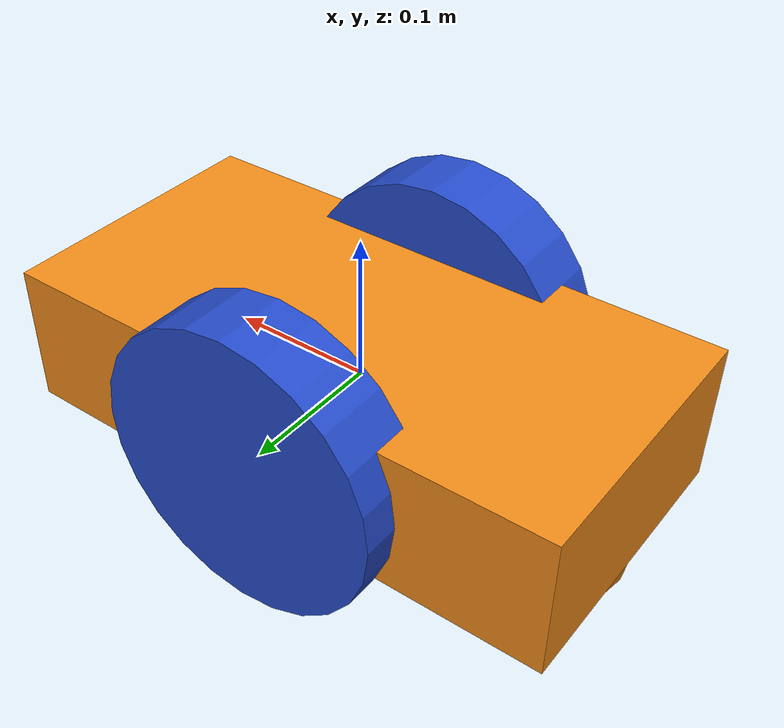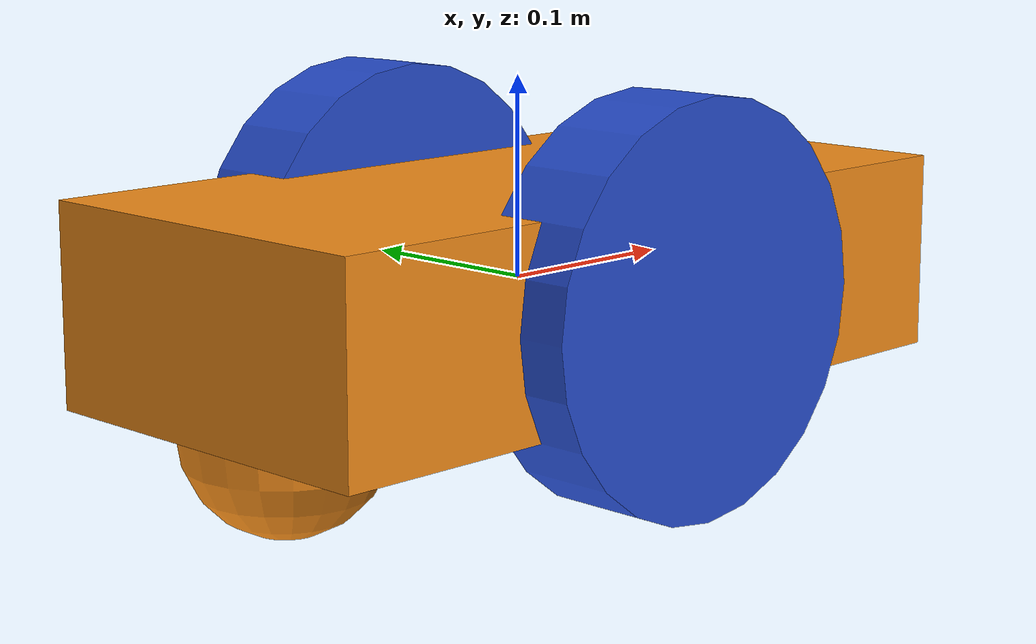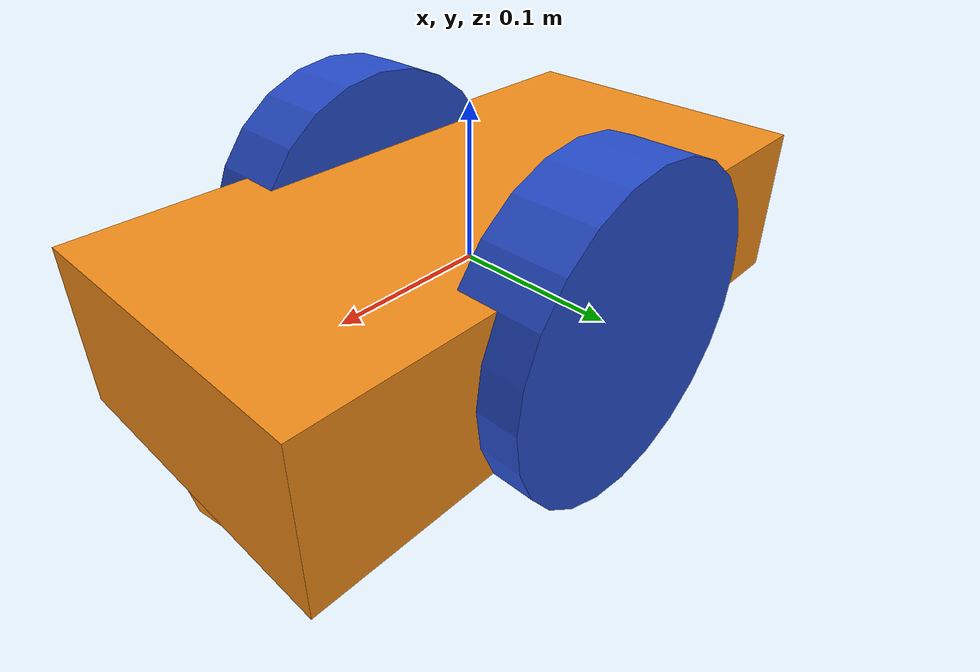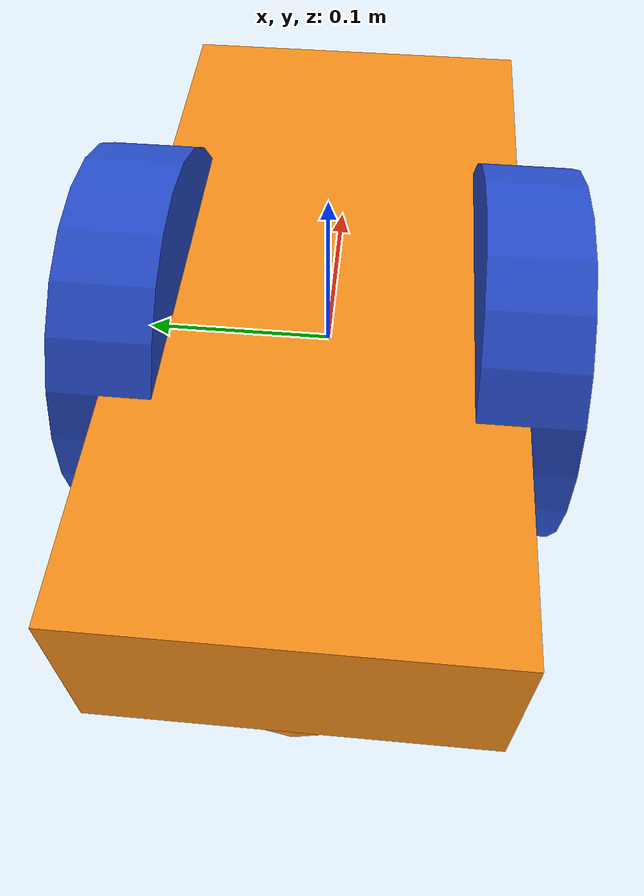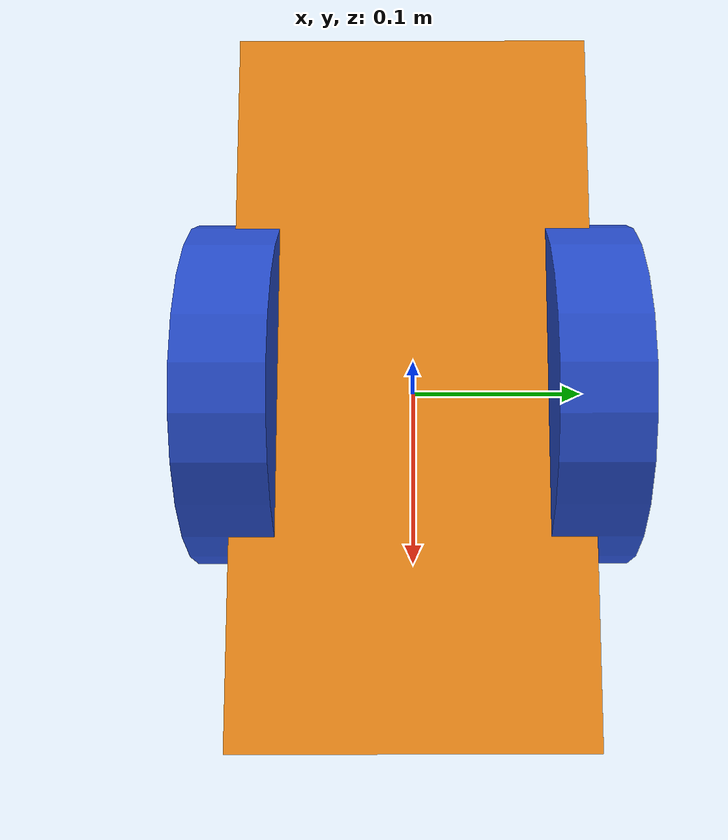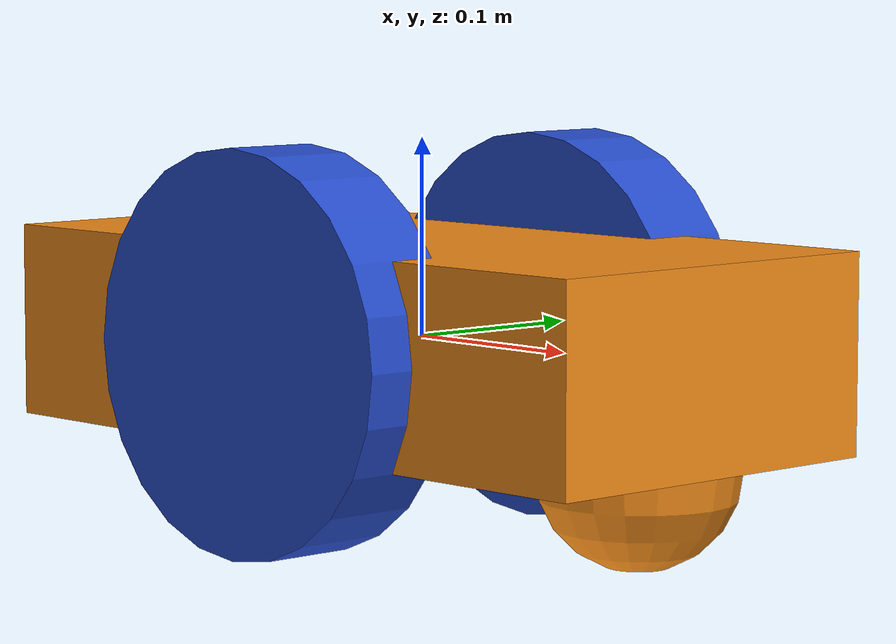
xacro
<?xml version='1.0'?>

<robot name="bot" xmlns:xacro="http://www.ros.org/wiki/xacro">

    <xacro:include filename="$(find bot_gazebo)/urdf/bot.gazebo" />

    <link name='base_link'>

        <inertial>
        <mass value="15.0"/>
        <origin xyz="0.0 0 0.1" rpy=" 0 0 0"/>
        <inertia
            ixx="0.1" ixy="0" ixz="0"
            iyy="0.1" iyz="0"
            izz="0.1"/>
        </inertial>

        <collision name='collision'>
            <geometry>
                <box size=".4 .2 .1"/>
            </geometry>
        </collision>

        <visual name='base_visual'>
        <origin xyz="0 0 0" rpy=" 0 0 0"/>
            <geometry>
                <box size=".4 .2 .1"/>
            </geometry>
        </visual>

        <collision name='caster_collision'>
            <origin xyz="-0.15 0 -0.05" rpy=" 0 0 0"/>
            <geometry>
                <sphere radius="0.05"/>
            </geometry>
            <surface>
                <friction>
                    <ode>
                        <mu>0</mu>
                        <mu2>0</mu2>
                        <slip1>1.0</slip1>
                        <slip2>1.0</slip2>
                    </ode>
                </friction>
            </surface>
        </collision>

        <visual name='caster_visual'>
            <origin xyz="-0.15 0 -0.05" rpy=" 0 0 0"/>
            <geometry>
                <sphere radius="0.05"/>
            </geometry>
        </visual>

        <collision name='caster_front_collision'>
            <origin xyz="0.15 0 -0.05" rpy=" 0 0 0"/>
            <geometry>
                <sphere radius="0.05"/>
            </geometry>
            <surface>
                <friction>
                    <ode>
                        <mu>0</mu>
                        <mu2>0</mu2>
                        <slip1>1.0</slip1>
                        <slip2>1.0</slip2>
                    </ode>
                </friction>
            </surface>
        </collision>

        <visual name='caster_front_visual'>
            <origin xyz="0.15 0 -0.05" rpy=" 0 0 0"/>
            <geometry>
                <sphere radius="0.05"/>
            </geometry>
        </visual>
    </link>

    <link name="left_wheel">
        <collision name="collision">
            <origin xyz="0 0 0" rpy="0 1.5707 1.5707"/>
            <geometry>
                <cylinder radius="0.1" length="0.05"/>
            </geometry>
        </collision>
        <visual name="left_wheel_visual">
            <origin xyz="0 0 0" rpy="0 1.5707 1.5707"/>
            <geometry>
                <cylinder radius="0.1" length="0.05"/>
            </geometry>
        </visual>
        <inertial>
            <origin xyz="0 0 0" rpy="0 1.5707 1.5707"/>
            <mass value="5"/>
            <inertia
                ixx=".1" ixy="0.0" ixz="0.0"
                iyy=".1" iyz="0.0"
                izz=".1"/>
        </inertial>
    </link>

    <link name="right_wheel">
        <collision name="collision">
            <origin xyz="0 0 0" rpy="0 1.5707 1.5707"/>
            <geometry>
                <cylinder radius="0.1" length="0.05"/>
            </geometry>
        </collision>
        <visual name="right_wheel_visual">
            <origin xyz="0 0 0" rpy="0 1.5707 1.5707"/>
            <geometry>
                <cylinder radius="0.1" length="0.05"/>
            </geometry>
        </visual>
        <inertial>
            <origin xyz="0 0 0" rpy="0 1.5707 1.5707"/>
            <mass value="5"/>
            <inertia
                ixx=".1" ixy="0.0" ixz="0.0"
                iyy=".1" iyz="0.0"
                izz=".1"/>
        </inertial>
    </link>

    <joint type="continuous" name="left_joint">
        <origin xyz="0 0.1 0" rpy="0 0 0"/>
        <child link="left_wheel"/>
        <parent link="base_link"/>
        <axis xyz="0 1 0" rpy="0 0 0"/>
        <limit effort="10000" velocity="1000"/>
        <joint_properties damping="1.0" friction="1.0"/>
    </joint>

    <joint type="continuous" name="right_joint">
        <origin xyz="0 -0.1 0" rpy="0 0 0"/>
        <child link="right_wheel"/>
        <parent link="base_link"/>
        <axis xyz="0 1 0" rpy="0 0 0"/>
        <limit effort="10000" velocity="1000"/>
        <joint_properties damping="1.0" friction="1.0"/>
    </joint>
</robot>
